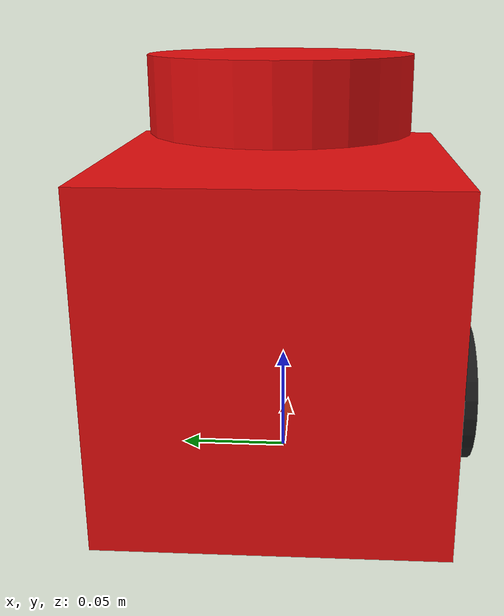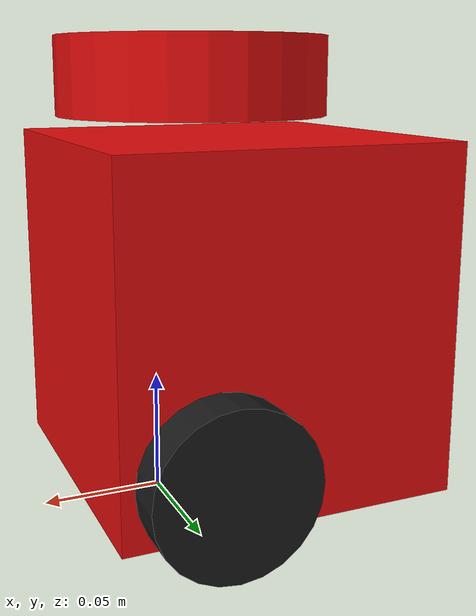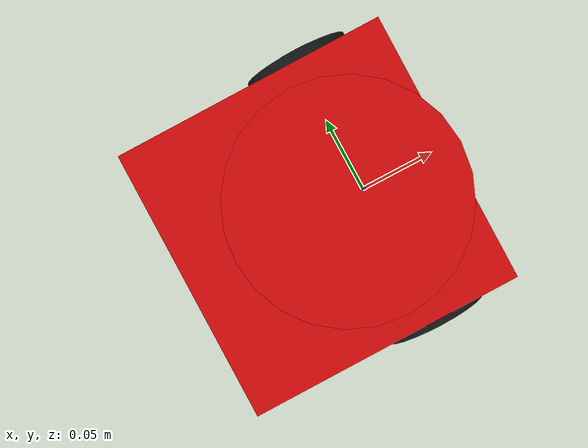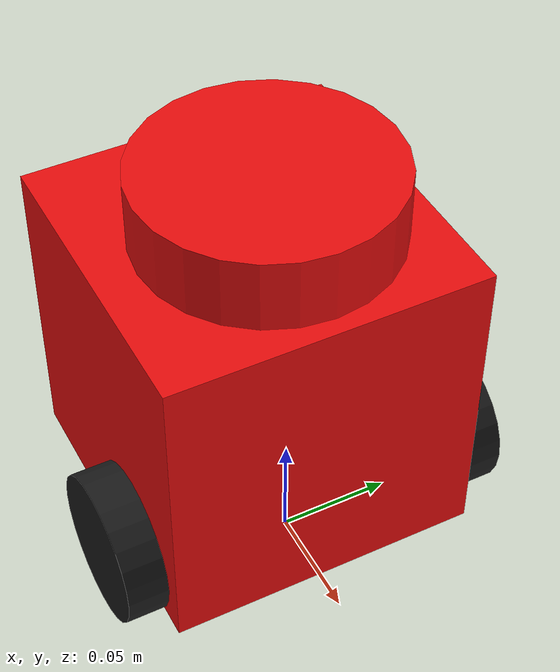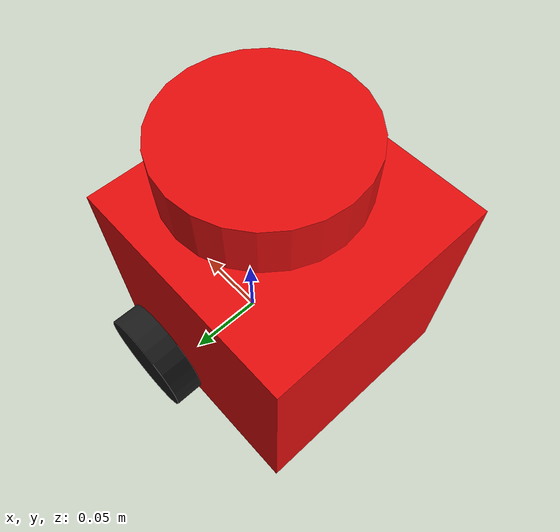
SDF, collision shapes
<?xml version="1.0" ?>
<sdf version="1.8">
  <model name="turtlebot3">
    <static>false</static>
    <pose>0 0 0 0 0 0</pose>

    <!-- BASE FOOTPRINT -->
    <link name="tb3_base_footprint"/>

    <joint name="base_joint" type="fixed">
      <parent>tb3_base_footprint</parent>
      <child>tb3_base_link</child>
    </joint>

    <!-- BASE LINK -->
    <link name="tb3_base_link">
      <pose>0 0 0.010 0 0 0</pose>
      <inertial>
        <mass>0.82573504</mass>
        <inertia>
          <ixx>0.0022124416</ixx>
          <ixy>-0.000012294101</ixy>
          <ixz>0.000034938785</ixz>
          <iyy>0.0021193702</iyy>
          <iyz>-0.0000050120904</iyz>
          <izz>0.0020064271</izz>
        </inertia>
      </inertial>
      <visual name="base_visual">
        <pose>-0.032 0 0 0 0 0</pose>
        <geometry>
          <mesh>
            <uri>model://turtlebot3_description/meshes/bases/burger_base.stl</uri>
            <scale>0.001 0.001 0.001</scale>
          </mesh>
        </geometry>
        <material>
          <ambient>0.6 0.0 0.0 1.0</ambient>
          <diffuse>0.9 0.05 0.05 1.0</diffuse>
          <specular>0.4 0.1 0.1 1.0</specular>
        </material>
      </visual>
      <collision name="base_collision">
        <pose>-0.032 0 0.070 0 0 0</pose>
        <geometry>
          <box><size>0.140 0.140 0.143</size></box>
        </geometry>
      </collision>
    </link>

    <!-- LEFT WHEEL -->
    <link name="wheel_left_link">
      <pose>0.0 0.08 0.033 -1.5708 0 0</pose>
      <inertial>
        <mass>0.028498940</mass>
        <inertia>
          <ixx>0.000011175580</ixx>
          <ixy>0</ixy>
          <ixz>0</ixz>
          <iyy>0.000011192413</iyy>
          <iyz>0</iyz>
          <izz>0.000020712558</izz>
        </inertia>
      </inertial>
      <visual name="wheel_left_visual">
        <pose>0 0 0 1.5708 0 0</pose>
        <geometry>
          <mesh>
            <uri>model://turtlebot3_description/meshes/wheels/left_tire.stl</uri>
            <scale>0.001 0.001 0.001</scale>
          </mesh>
        </geometry>
        <material>
          <ambient>0.05 0.05 0.05 1.0</ambient>
          <diffuse>0.1 0.1 0.1 1.0</diffuse>
          <specular>0.1 0.1 0.1 1.0</specular>
        </material>
      </visual>
      <collision name="wheel_left_collision">
        <geometry>
          <cylinder><radius>0.033</radius><length>0.018</length></cylinder>
        </geometry>
      </collision>
    </link>

    <joint name="wheel_left_joint" type="revolute">
      <parent>tb3_base_link</parent>
      <child>wheel_left_link</child>
      <axis>
        <xyz expressed_in="__model__">0 1 0</xyz>
        <limit>
          <lower>-1.79769e+308</lower>
          <upper>1.79769e+308</upper>
          <effort>20</effort>
        </limit>
      </axis>
    </joint>

    <!-- RIGHT WHEEL -->
    <link name="wheel_right_link">
      <pose>0.0 -0.08 0.033 -1.5708 0 0</pose>
      <inertial>
        <mass>0.028498940</mass>
        <inertia>
          <ixx>0.000011175580</ixx>
          <ixy>0</ixy>
          <ixz>0</ixz>
          <iyy>0.000011192413</iyy>
          <iyz>0</iyz>
          <izz>0.000020712558</izz>
        </inertia>
      </inertial>
      <visual name="wheel_right_visual">
        <pose>0 0 0 1.5708 0 0</pose>
        <geometry>
          <mesh>
            <uri>model://turtlebot3_description/meshes/wheels/right_tire.stl</uri>
            <scale>0.001 0.001 0.001</scale>
          </mesh>
        </geometry>
        <material>
          <ambient>0.05 0.05 0.05 1.0</ambient>
          <diffuse>0.1 0.1 0.1 1.0</diffuse>
          <specular>0.1 0.1 0.1 1.0</specular>
        </material>
      </visual>
      <collision name="wheel_right_collision">
        <geometry>
          <cylinder><radius>0.033</radius><length>0.018</length></cylinder>
        </geometry>
      </collision>
    </link>

    <joint name="wheel_right_joint" type="revolute">
      <parent>tb3_base_link</parent>
      <child>wheel_right_link</child>
      <axis>
        <xyz expressed_in="__model__">0 1 0</xyz>
        <limit>
          <lower>-1.79769e+308</lower>
          <upper>1.79769e+308</upper>
          <effort>20</effort>
        </limit>
      </axis>
    </joint>

    <!-- CASTER (sphere, zero friction) -->
    <link name="caster_back_link">
      <pose>-0.081 0 0.005 0 0 0</pose>
      <inertial>
        <mass>0.005</mass>
        <inertia>
          <ixx>0.0001</ixx><ixy>0</ixy><ixz>0</ixz>
          <iyy>0.0001</iyy><iyz>0</iyz><izz>0.0001</izz>
        </inertia>
      </inertial>
      <collision name="caster_collision">
        <geometry>
          <sphere><radius>0.005</radius></sphere>
        </geometry>
        <surface>
          <friction>
            <ode><mu>0.0</mu><mu2>0.0</mu2></ode>
          </friction>
        </surface>
      </collision>
    </link>

    <joint name="caster_back_joint" type="fixed">
      <parent>tb3_base_link</parent>
      <child>caster_back_link</child>
    </joint>

    <!-- IMU LINK -->
    <link name="imu_link">
      <pose>-0.032 0 0.078 0 0 0</pose>
    </link>

    <joint name="imu_joint" type="fixed">
      <parent>tb3_base_link</parent>
      <child>imu_link</child>
    </joint>

    <!-- LIDAR (base_scan) -->
    <link name="base_scan">
      <pose>-0.032 0 0.182 0 0 0</pose>
      <inertial>
        <mass>0.114</mass>
        <inertia>
          <ixx>0.001</ixx><ixy>0</ixy><ixz>0</ixz>
          <iyy>0.001</iyy><iyz>0</iyz><izz>0.001</izz>
        </inertia>
      </inertial>
      <visual name="lidar_visual">
        <geometry>
          <mesh>
            <uri>model://turtlebot3_description/meshes/sensors/lds.stl</uri>
            <scale>0.001 0.001 0.001</scale>
          </mesh>
        </geometry>
        <material>
          <ambient>0.6 0.0 0.0 1.0</ambient>
          <diffuse>0.9 0.05 0.05 1.0</diffuse>
          <specular>0.4 0.1 0.1 1.0</specular>
        </material>
      </visual>
      <collision name="lidar_collision">
        <pose>0.015 0 -0.0065 0 0 0</pose>
        <geometry>
          <cylinder><length>0.0315</length><radius>0.055</radius></cylinder>
        </geometry>
      </collision>
      <sensor name="lidar" type="gpu_lidar">
        <always_on>true</always_on>
        <visualize>true</visualize>
        <update_rate>5</update_rate>
        <topic>scan</topic>
        <gz_frame_id>base_scan</gz_frame_id>
        <lidar>
          <scan>
            <horizontal>
              <samples>360</samples>
              <resolution>1</resolution>
              <min_angle>0.0</min_angle>
              <max_angle>6.28318530718</max_angle>
            </horizontal>
          </scan>
          <range>
            <min>0.120</min>
            <max>3.5</max>
            <resolution>0.015</resolution>
          </range>
          <noise>
            <type>gaussian</type>
            <mean>0.0</mean>
            <stddev>0.01</stddev>
          </noise>
        </lidar>
      </sensor>
    </link>

    <joint name="scan_joint" type="fixed">
      <parent>tb3_base_link</parent>
      <child>base_scan</child>
    </joint>

    <!-- PLUGINS -->
    <plugin filename="ignition-gazebo-diff-drive-system"
            name="ignition::gazebo::systems::DiffDrive">
      <left_joint>wheel_left_joint</left_joint>
      <right_joint>wheel_right_joint</right_joint>
      <wheel_separation>0.160</wheel_separation>
      <wheel_radius>0.033</wheel_radius>
      <max_linear_acceleration>1.0</max_linear_acceleration>
      <min_linear_acceleration>-1.0</min_linear_acceleration>
      <max_angular_acceleration>2.0</max_angular_acceleration>
      <min_angular_acceleration>-2.0</min_angular_acceleration>
      <odom_publish_frequency>30</odom_publish_frequency>
      <topic>/turtlebot3/cmd_vel</topic>
      <odom_topic>odom</odom_topic>
      <tf_topic>tf</tf_topic>
      <frame_id>odom</frame_id>
      <child_frame_id>tb3_base_footprint</child_frame_id>
    </plugin>

    <plugin filename="ignition-gazebo-joint-state-publisher-system"
            name="ignition::gazebo::systems::JointStatePublisher">
      <topic>joint_states</topic>
      <joint_name>wheel_left_joint</joint_name>
      <joint_name>wheel_right_joint</joint_name>
    </plugin>

  </model>
</sdf>
